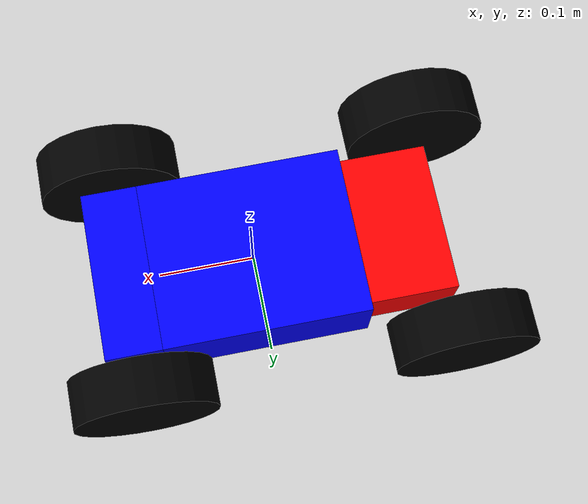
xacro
<?xml version="1.0"?>

<robot name="hybrid_robotv0_2" xmlns:xacro="http://ros.org/wiki/xacro">

    <xacro:include filename="$(find hybrid_jumping_robot)/urdf/material.xacro"/>
    <xacro:include filename="$(find hybrid_jumping_robot)/urdf/plugins.gazebo.xacro"/>
    <xacro:include filename="$(find hybrid_jumping_robot)/urdf/macro.xacro"/>
    <xacro:include filename="$(find hybrid_jumping_robot)/urdf/transmission.xacro"/>

    <xacro:property name="wheel_r" value="0.075"/>
    <xacro:property name="wheel_width" value="0.05"/>
    <xacro:property name="wheel_mass" value="0.3"/>
    <xacro:property name="wheel_back_mass" value="0.05"/>
    <xacro:property name="base_length" value="0.215"/>
    <xacro:property name="base_width" value="0.1772"/>
    <xacro:property name="base_height" value="0.0801"/>
    <xacro:property name="base_mass" value="0.4"/>
    <xacro:property name="extension_length" value="0.20"/>
    <xacro:property name="extension_width" value="0.1581"/>
    <xacro:property name="extension_height" value="0.0601"/>
    <xacro:property name="extension_mass" value="0.4"/>
    <xacro:property name="motor_base_length" value="0.0585"/>
    <xacro:property name="motor_base_width" value="${base_width}"/>
    <xacro:property name="motor_base_height" value="${base_height}"/>
    <xacro:property name="motor_base_mass" value="0.4"/>

    <link name="base">
        <visual>
            <geometry>
                <box size="${base_length} ${base_width}  ${base_height}"/>
            </geometry>
            <material name="blue"/>
        </visual>
        <collision>
            <geometry>
                <box size="${base_length} ${base_width}  ${base_height}"/>
            </geometry>
        </collision>
        <xacro:box_inertial mass="${base_mass}" length="${base_length}" width="${base_width}"
                            height="${base_height}"/>
    </link>

    <link name="motor_base">
        <visual>
            <geometry>
                <box size="${motor_base_length} ${motor_base_width}  ${motor_base_height}"/>
            </geometry>
            <material name="blue"/>
        </visual>
        <collision>
            <geometry>
                <box size="${motor_base_length} ${motor_base_width}  ${motor_base_height}"/>
            </geometry>
        </collision>
        <xacro:box_inertial mass="${motor_base_mass}" length="${motor_base_length}" width="${motor_base_width}"
                            height="${motor_base_height}"/>
    </link>
    <joint name="base_motor_base_joint" type="fixed">
        <axis xyz="1 0 0"/>
        <parent link="base"/>
        <child link="motor_base"/>
        <origin xyz="${motor_base_length*0.5+base_length*0.5} 0 0"/>
    </joint>

    <link name="extension">
        <visual>
            <geometry>
                <box size="${extension_length} ${extension_width} ${extension_height}"/>
            </geometry>
            <material name="red"/>
        </visual>
        <collision>
            <geometry>
                <box size="${extension_length} ${extension_width} ${extension_height}"/>
            </geometry>
        </collision>
        <xacro:box_inertial mass="${extension_mass}" length="${extension_length}" width="${extension_width}"
                            height="${extension_height}"/>
    </link>
    <joint name="extension_base_joint" type="prismatic">
        <axis xyz="1 0 0"/>
        <parent link="base"/>
        <child link="extension"/>
        <origin xyz="-0.1 0 0"/>
        <limit lower="-0.9" upper="0.0" effort="10000" velocity="1000"/>
        <joint_properties damping="100.0" friction="0.0"/>
    </joint>

    <xacro:wheel position="front" side="right" parent="motor_base" wheel_r="${wheel_r}" wheel_width="${wheel_width}"
                 base_length="${motor_base_length}" base_width="${base_width}" mass="${wheel_mass}"/>
    <xacro:wheel position="front" side="left" parent="motor_base" wheel_r="${wheel_r}" wheel_width="${wheel_width}"
                 base_length="${motor_base_length}" base_width="${base_width}" mass="${wheel_mass}"/>
    <xacro:wheel position="back" side="left" parent="extension" wheel_r="${wheel_r}" wheel_width="${wheel_width}"
                 base_length="${base_length}" base_width="${base_width}" mass="${wheel_back_mass}"/>
    <xacro:wheel position="back" side="right" parent="extension" wheel_r="${wheel_r}" wheel_width="${wheel_width}"
                 base_length="${base_length}" base_width="${base_width}" mass="${wheel_back_mass}"/>

</robot>

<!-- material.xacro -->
<robot name="hybrid_robotv0_2" xmlns:xacro="http://ros.org/wiki/xacro">
  <material name="black">
      <color rgba="0 0 0 1"/>
  </material>

  <material name="red">
      <color rgba="1 0 0 1"/>
  </material>

  <material name="blue">
      <color rgba="0 0 1 1"/>
  </material>
</robot>

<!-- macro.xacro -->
<robot name="hybrid_robotv0_2" xmlns:xacro="http://ros.org/wiki/xacro">

    <xacro:macro name="wheel" params="position side parent wheel_r wheel_width base_length base_width mass">

        <link name="${position}_${side}_wheel">
            <visual>
                <geometry>
                    <cylinder radius="${wheel_r}" length="${wheel_width}"/>
                </geometry>
                <material name="black"/>
            </visual>
            <collision>
                <geometry>
                    <cylinder radius="${wheel_r}" length="${wheel_width}"/>
                </geometry>
            </collision>
            <xacro:if value="${position == 'back'}">
                <inertial>
                    <mass value="${mass}"/>
                    <inertia ixx="${181652.29/1000000000}"
                             ixy="0.0"
                             ixz="0.0"
                             iyy="${181652.29/1000000000}"
                             iyz="0.0"
                             izz="${361145.59/1000000000}"/>
                </inertial>
            </xacro:if>
            <xacro:if value="${position == 'front'}">
                <inertial>
                    <mass value="${mass}"/>
                    <inertia ixx="${528551.19/1000000000}"
                             ixy="0.0"
                             ixz="0.0"
                             iyy="${528551.19/1000000000}"
                             iyz="0.0"
                             izz="${1050820.37/1000000000}"/>
                </inertial>
            </xacro:if>

        </link>

        <xacro:property name="clear" value="0.009"/>

        <xacro:if value="${position == 'back'}">
            <joint name="${position}_${side}_wheel_joint" type="continuous">
                <xacro:property name="origin_x" value="${-(base_length/2-0.010)}"/>
                <xacro:property name="origin_y" value="${(base_width + wheel_width)/2 + clear}"/>
                <xacro:if value="${side == 'right'}">
                    <xacro:property name="origin_y" value="${-(base_width + wheel_width)/2 - clear}"/>
                </xacro:if>
                <axis xyz="0 0 1" rpy="0 0 0"/>
                <parent link="${parent}"/>
                <child link="${position}_${side}_wheel"/>
                <origin xyz="${origin_x} ${origin_y} 0" rpy="${pi/2} 0 0"/>
                <joint_properties damping="0.0" friction="0.0"/>
                <limit effort="0.0" velocity="100000.0"/>
            </joint>
        </xacro:if>
        <xacro:if value="${position == 'front'}">
            <joint name="${position}_${side}_wheel_joint" type="continuous">
                <xacro:property name="origin_x" value="${0}"/>
                <xacro:property name="origin_y" value="${(base_width + wheel_width)/2 + clear}"/>
                <xacro:if value="${side == 'right'}">
                    <xacro:property name="origin_y" value="${-(base_width + wheel_width)/2 - clear}"/>
                </xacro:if>
                <axis xyz="0 0 1" rpy="0 0 0"/>
                <parent link="${parent}"/>
                <child link="${position}_${side}_wheel"/>
                <origin xyz="${origin_x} ${origin_y} 0" rpy="${pi/2} 0 0"/>
                <limit effort="1000000" velocity="1000"/>
                <joint_properties damping="0.0" friction="10000.0"/>
            </joint>
        </xacro:if>

    </xacro:macro>
    <!--box_inertial makes it easier to implement mass and inertial for a box shape-->
    <xacro:macro name="box_inertial" params="mass length width height">
        <inertial>
            <mass value="${mass}"/>
            <inertia
                    ixx="${1/12*mass*(width*width+height*height)}"
                    ixy="0.0"
                    ixz="0.0"
                    iyy="${1/12*mass*(length*length+height*height)}"
                    iyz="0.0"
                    izz="${1/12*mass*(width*width+length*length)}"/>
        </inertial>
    </xacro:macro>
    <!--cylinder_inertial makes it easier to implement mass and inertial for a cylinder shape-->
    <xacro:macro name="cylinder_inertial" params="mass height radii">
        <inertial>
            <mass value="${mass}"/>
            <inertia
                    ixx="${1/12*mass*(3*radii*radii+height*height)}"
                    ixy="0.0"
                    ixz="0.0"
                    iyy="${1/12*mass*(3*radii*radii+height*height)}"
                    iyz="0.0"
                    izz="${0.5*mass*(radii*radii)}"/>
        </inertial>
    </xacro:macro>

</robot>
